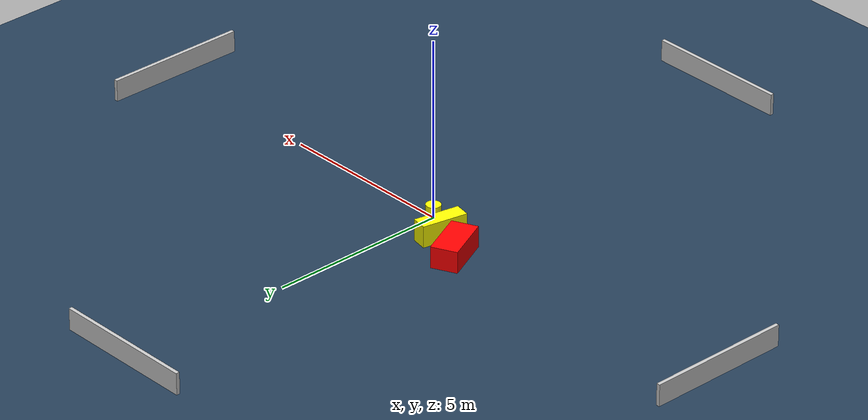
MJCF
<?xml version="1.0" ?>
<mujoco model="generated_environment">
  <option timestep="0.01" integrator="RK4" cone="elliptic"/>
  <default>
    <geom density="1"/>
  </default>
  <asset>
    <texture builtin="gradient" height="3072" name="skybox" rgb1="0.3 0.5 0.7" rgb2="0 0 0" type="skybox" width="512"/>
    <texture builtin="checker" height="300" name="groundplane" rgb1="0.2 0.3 0.4" rgb2="0.1 0.2 0.3" type="2d" width="300"/>
    <material name="groundplane" reflectance="0.2" texrepeat="5 5" texture="groundplane"/>
  </asset>
  <worldbody>
    <light dir="0 0 -1" directional="true" pos="0 0 1.5"/>
    <geom condim="3" friction="0.5 0.005 0.001" material="groundplane" name="floor" pos="0 0 0" size="0 0 0.05" type="plane"/>
    <body name="walls">
      <geom name="wall_1" condim="4" pos="-10.0 0.0 0.3" rgba="0.800000011920929 0.800000011920929 0.800000011920929 1.0" size="0.05 2.0 0.3" type="box"/>
      <geom name="wall_2" condim="4" pos="10.0 0.0 0.3" rgba="0.800000011920929 0.800000011920929 0.800000011920929 1.0" size="0.05 2.0 0.3" type="box"/>
      <geom name="wall_3" condim="4" pos="0.0 -10.0 0.3" rgba="0.800000011920929 0.800000011920929 0.800000011920929 1.0" size="2.0 0.05 0.3" type="box"/>
      <geom name="wall_4" condim="4" pos="0.0 10.0 0.3" rgba="0.800000011920929 0.800000011920929 0.800000011920929 1.0" size="2.0 0.05 0.3" type="box"/>
    </body>
    <body name="robot">
      <joint name="joint_x" type="slide" pos="0 0 0" axis="1 0 0"/>
      <joint name="joint_y" type="slide" pos="0 0 0" axis="0 1 0"/>
      <geom name="robot" type="cylinder" pos="0.0 0.0 0.2" size="0.2 0.2 0.0" mass="5.0" friction="1.0 0.005 0.0001" condim="4" rgba="1.0 1.0 0.0 1.0"/>
    </body>
    <body name="obstacle_1_movable">
      <geom name="obstacle_1_movable" condim="4" pos="-0.8159133627557384 0.5035750183168154 0.3" euler="0 0 78.67508910504773" friction="0.0 0.005 0.001" rgba="1.0 1.0 0.0 1.0" size="0.6346306300738294 0.21922998860321677 0.3" type="box" mass="0.1"/>
      <joint type="free"/>
    </body>
    <body name="obstacle_2_static">
      <geom name="obstacle_2_static" condim="4" pos="-1.7599490332999062 0.910430334784092 0.3" euler="0 0 115.14540407607558" friction="0.0 0.005 0.001" rgba="1.0 0.0 0.0 1.0" size="0.6872831926465242 0.36202590350998787 0.3" type="box"/>
    </body>
  </worldbody>
  <actuator>
    <motor name="actuator_x" joint="joint_x" gear="1" ctrlrange="-1 1"/>
    <motor name="actuator_y" joint="joint_y" gear="1" ctrlrange="-1 1"/>
  </actuator>
</mujoco>
